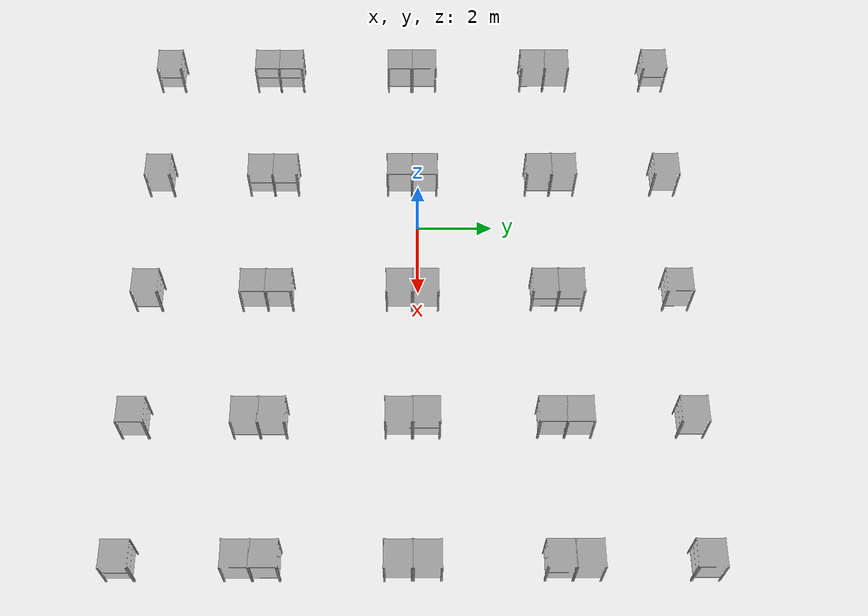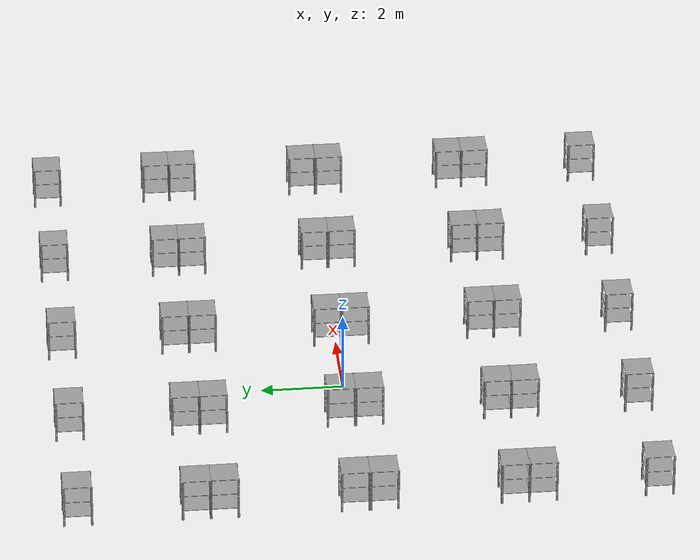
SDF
<?xml version="1.0"?>
<sdf version="1.6">
    <model name="shelfs">
    <include>
   <uri>https://fuel.gazebosim.org/1.0/MovAi/models/shelf</uri>
   <name>shelf_1_1</name>
   <pose>-5.0 -7.0 0 0 0 0</pose>
 </include>
    <include>
   <uri>https://fuel.gazebosim.org/1.0/MovAi/models/shelf</uri>
   <name>shelf_1_2</name>
   <pose>-1.4 -7.0 0 0 0 0</pose>
 </include>
    <include>
   <uri>https://fuel.gazebosim.org/1.0/MovAi/models/shelf</uri>
   <name>shelf_1_3</name>
   <pose>2.2 -7.0 0 0 0 0</pose>
 </include>
    <include>
   <uri>https://fuel.gazebosim.org/1.0/MovAi/models/shelf</uri>
   <name>shelf_1_4</name>
   <pose>5.8 -7.0 0 0 0 0</pose>
 </include>
    <include>
   <uri>https://fuel.gazebosim.org/1.0/MovAi/models/shelf</uri>
   <name>shelf_1_5</name>
   <pose>9.4 -7.0 0 0 0 0</pose>
 </include>
    <include>
   <uri>https://fuel.gazebosim.org/1.0/MovAi/models/shelf</uri>
   <name>shelf_2_1</name>
   <pose>-5.0 -4.23 0 0 0 0</pose>
 </include>
    <include>
   <uri>https://fuel.gazebosim.org/1.0/MovAi/models/shelf</uri>
   <name>shelf_2_2</name>
   <pose>-1.4 -4.23 0 0 0 0</pose>
 </include>
    <include>
   <uri>https://fuel.gazebosim.org/1.0/MovAi/models/shelf</uri>
   <name>shelf_2_3</name>
   <pose>2.2 -4.23 0 0 0 0</pose>
 </include>
    <include>
   <uri>https://fuel.gazebosim.org/1.0/MovAi/models/shelf</uri>
   <name>shelf_2_4</name>
   <pose>5.8 -4.23 0 0 0 0</pose>
 </include>
    <include>
   <uri>https://fuel.gazebosim.org/1.0/MovAi/models/shelf</uri>
   <name>shelf_2_5</name>
   <pose>9.4 -4.23 0 0 0 0</pose>
 </include>
    <include>
   <uri>https://fuel.gazebosim.org/1.0/MovAi/models/shelf</uri>
   <name>shelf_3_1</name>
   <pose>-5.0 -3.58 0 0 0 0</pose>
 </include>
    <include>
   <uri>https://fuel.gazebosim.org/1.0/MovAi/models/shelf</uri>
   <name>shelf_3_2</name>
   <pose>-1.4 -3.58 0 0 0 0</pose>
 </include>
    <include>
   <uri>https://fuel.gazebosim.org/1.0/MovAi/models/shelf</uri>
   <name>shelf_3_3</name>
   <pose>2.2 -3.58 0 0 0 0</pose>
 </include>
    <include>
   <uri>https://fuel.gazebosim.org/1.0/MovAi/models/shelf</uri>
   <name>shelf_3_4</name>
   <pose>5.8 -3.58 0 0 0 0</pose>
 </include>
    <include>
   <uri>https://fuel.gazebosim.org/1.0/MovAi/models/shelf</uri>
   <name>shelf_3_5</name>
   <pose>9.4 -3.58 0 0 0 0</pose>
 </include>
    <include>
   <uri>https://fuel.gazebosim.org/1.0/MovAi/models/shelf</uri>
   <name>shelf_4_1</name>
   <pose>-5.0 -0.48 0 0 0 0</pose>
 </include>
    <include>
   <uri>https://fuel.gazebosim.org/1.0/MovAi/models/shelf</uri>
   <name>shelf_4_2</name>
   <pose>-1.4 -0.48 0 0 0 0</pose>
 </include>
    <include>
   <uri>https://fuel.gazebosim.org/1.0/MovAi/models/shelf</uri>
   <name>shelf_4_3</name>
   <pose>2.2 -0.48 0 0 0 0</pose>
 </include>
    <include>
   <uri>https://fuel.gazebosim.org/1.0/MovAi/models/shelf</uri>
   <name>shelf_4_4</name>
   <pose>5.8 -0.48 0 0 0 0</pose>
 </include>
    <include>
   <uri>https://fuel.gazebosim.org/1.0/MovAi/models/shelf</uri>
   <name>shelf_4_5</name>
   <pose>9.4 -0.48 0 0 0 0</pose>
 </include>
  <include>
   <uri>https://fuel.gazebosim.org/1.0/MovAi/models/shelf</uri>
   <name>shelf_5_1</name>
   <pose>-5.0 0.2 0 0 0 0</pose>
 </include>
    <include>
   <uri>https://fuel.gazebosim.org/1.0/MovAi/models/shelf</uri>
   <name>shelf_5_2</name>
   <pose>-1.4 0.2 0 0 0 0</pose>
 </include>
    <include>
   <uri>https://fuel.gazebosim.org/1.0/MovAi/models/shelf</uri>
   <name>shelf_5_3</name>
   <pose>2.2 0.2 0 0 0 0</pose>
 </include>
    <include>
   <uri>https://fuel.gazebosim.org/1.0/MovAi/models/shelf</uri>
   <name>shelf_5_4</name>
   <pose>5.8 0.2 0 0 0 0</pose>
 </include>
    <include>
   <uri>https://fuel.gazebosim.org/1.0/MovAi/models/shelf</uri>
   <name>shelf_5_5</name>
   <pose>9.4 0.2 0 0 0 0</pose>
 </include>
    <include>
   <uri>https://fuel.gazebosim.org/1.0/MovAi/models/shelf</uri>
   <name>shelf_6_1</name>
   <pose>-5.0 3.28 0 0 0 0</pose>
 </include>
    <include>
   <uri>https://fuel.gazebosim.org/1.0/MovAi/models/shelf</uri>
   <name>shelf_6_2</name>
   <pose>-1.4 3.28 0 0 0 0</pose>
 </include>
    <include>
   <uri>https://fuel.gazebosim.org/1.0/MovAi/models/shelf</uri>
   <name>shelf_6_3</name>
   <pose>2.2 3.28 0 0 0 0</pose>
 </include>
    <include>
   <uri>https://fuel.gazebosim.org/1.0/MovAi/models/shelf</uri>
   <name>shelf_6_4</name>
   <pose>5.8 3.28 0 0 0 0</pose>
 </include>
    <include>
   <uri>https://fuel.gazebosim.org/1.0/MovAi/models/shelf</uri>
   <name>shelf_6_5</name>
   <pose>9.4 3.28 0 0 0 0</pose>
 </include>
    <include>
   <uri>https://fuel.gazebosim.org/1.0/MovAi/models/shelf</uri>
   <name>shelf_7_1</name>
   <pose>-5.0 3.94 0 0 0 0</pose>
 </include>
    <include>
   <uri>https://fuel.gazebosim.org/1.0/MovAi/models/shelf</uri>
   <name>shelf_7_2</name>
   <pose>-1.4 3.94 0 0 0 0</pose>
 </include>
    <include>
   <uri>https://fuel.gazebosim.org/1.0/MovAi/models/shelf</uri>
   <name>shelf_7_3</name>
   <pose>2.2 3.94 0 0 0 0</pose>
 </include>
    <include>
   <uri>https://fuel.gazebosim.org/1.0/MovAi/models/shelf</uri>
   <name>shelf_7_4</name>
   <pose>5.8 3.94 0 0 0 0</pose>
 </include>
    <include>
   <uri>https://fuel.gazebosim.org/1.0/MovAi/models/shelf</uri>
   <name>shelf_7_5</name>
   <pose>9.4 3.94 0 0 0 0</pose>
 </include>
    <include>
   <uri>https://fuel.gazebosim.org/1.0/MovAi/models/shelf</uri>
   <name>shelf_8_1</name>
   <pose>-5.0 6.72 0 0 0 0</pose>
 </include>
    <include>
   <uri>https://fuel.gazebosim.org/1.0/MovAi/models/shelf</uri>
   <name>shelf_8_2</name>
   <pose>-1.4 6.72 0 0 0 0</pose>
 </include>
    <include>
   <uri>https://fuel.gazebosim.org/1.0/MovAi/models/shelf</uri>
   <name>shelf_8_3</name>
   <pose>2.2 6.72 0 0 0 0</pose>
 </include>
    <include>
   <uri>https://fuel.gazebosim.org/1.0/MovAi/models/shelf</uri>
   <name>shelf_8_4</name>
   <pose>5.8 6.72 0 0 0 0</pose>
 </include>
    <include>
   <uri>https://fuel.gazebosim.org/1.0/MovAi/models/shelf</uri>
   <name>shelf_8_5</name>
   <pose>9.4 6.72 0 0 0 0</pose>
 </include>
    </model>
</sdf>

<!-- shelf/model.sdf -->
<sdf version='1.6'>
  <model name='shelf'>
    <link name='link'>
      <inertial>
        <mass>0.1</mass>
        <inertia>
          <ixx>1</ixx>
          <ixy>0.00</ixy>
          <ixz>0.00</ixz>
          <iyy>1</iyy>
          <iyz>0.00</iyz>
          <izz>1</izz>
        </inertia>
      </inertial>
      <pose frame=''>0 0 0 0 -0 0</pose>
      <visual name='visual'>
        <pose frame=''>0 0 0 0 -0 0</pose>
        <geometry>
          <mesh>
            <uri>model://shelf/meshes/shelf.dae</uri>
            <scale>1 1 1</scale>
          </mesh>
        </geometry>
        <transparency>0</transparency>
        <cast_shadows>1</cast_shadows>
      </visual>
      <collision name='collision'>
        <laser_retro>0</laser_retro>
        <max_contacts>10</max_contacts>
        <pose frame=''>0 0 0 0 -0 0</pose>
        <geometry>
          <mesh>
            <uri>model://shelf/meshes/shelf.dae</uri>
            <scale>1 1 1</scale>
          </mesh>
        </geometry>
        <surface>
          <friction>
            <ode>
              <mu>1</mu>
              <mu2>1</mu2>
              <fdir1>0 0 0</fdir1>
              <slip1>0</slip1>
              <slip2>0</slip2>
            </ode>
            <torsional>
              <coefficient>1</coefficient>
              <patch_radius>1</patch_radius>
              <surface_radius>1</surface_radius>
              <use_patch_radius>1</use_patch_radius>
              <ode>
                <slip>0</slip>
              </ode>
            </torsional>
          </friction>
          <bounce>
            <restitution_coefficient>1</restitution_coefficient>
            <threshold>1e+06</threshold>
          </bounce>
          <contact>
            <collide_without_contact>0</collide_without_contact>
            <collide_without_contact_bitmask>1</collide_without_contact_bitmask>
            <collide_bitmask>1</collide_bitmask>
            <ode>
              <soft_cfm>0</soft_cfm>
              <soft_erp>0.2</soft_erp>
              <kp>1e+13</kp>
              <kd>1</kd>
              <max_vel>0.01</max_vel>
              <min_depth>0</min_depth>
            </ode>
            <bullet>
              <split_impulse>1</split_impulse>
              <split_impulse_penetration_threshold>-0.01</split_impulse_penetration_threshold>
              <soft_cfm>0</soft_cfm>
              <soft_erp>0.2</soft_erp>
              <kp>1e+13</kp>
              <kd>1</kd>
            </bullet>
          </contact>
        </surface>
      </collision>
    </link>
    <static>0</static>
    <allow_auto_disable>1</allow_auto_disable>
  </model>
</sdf>
